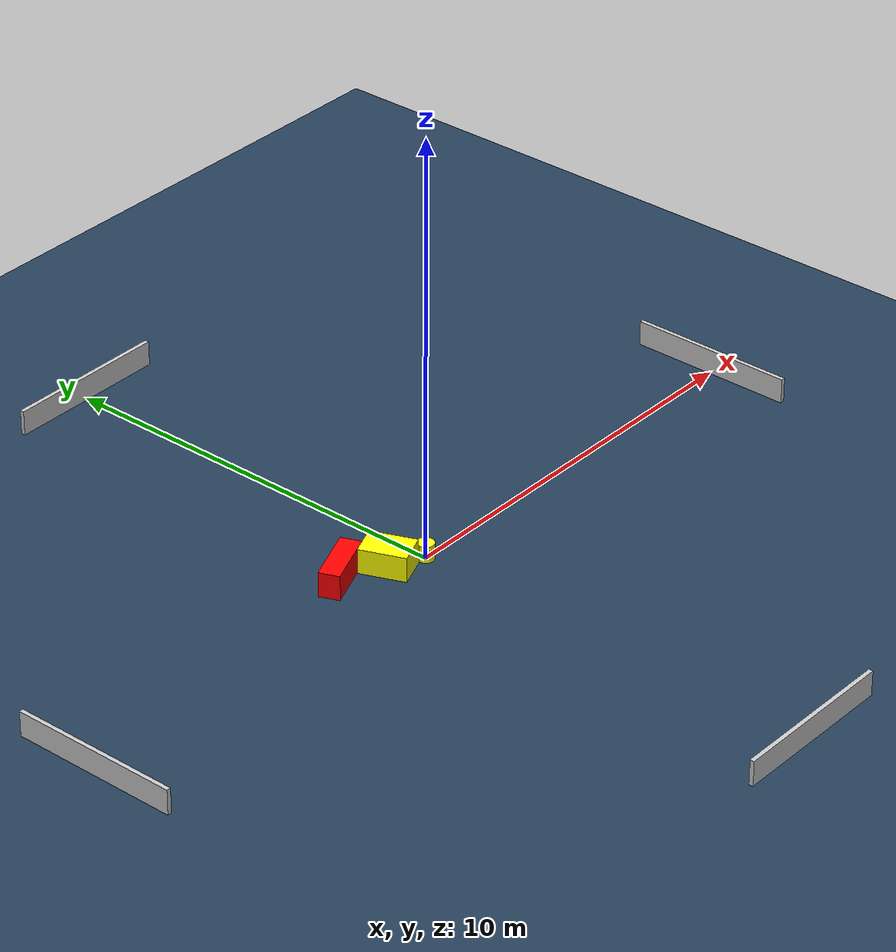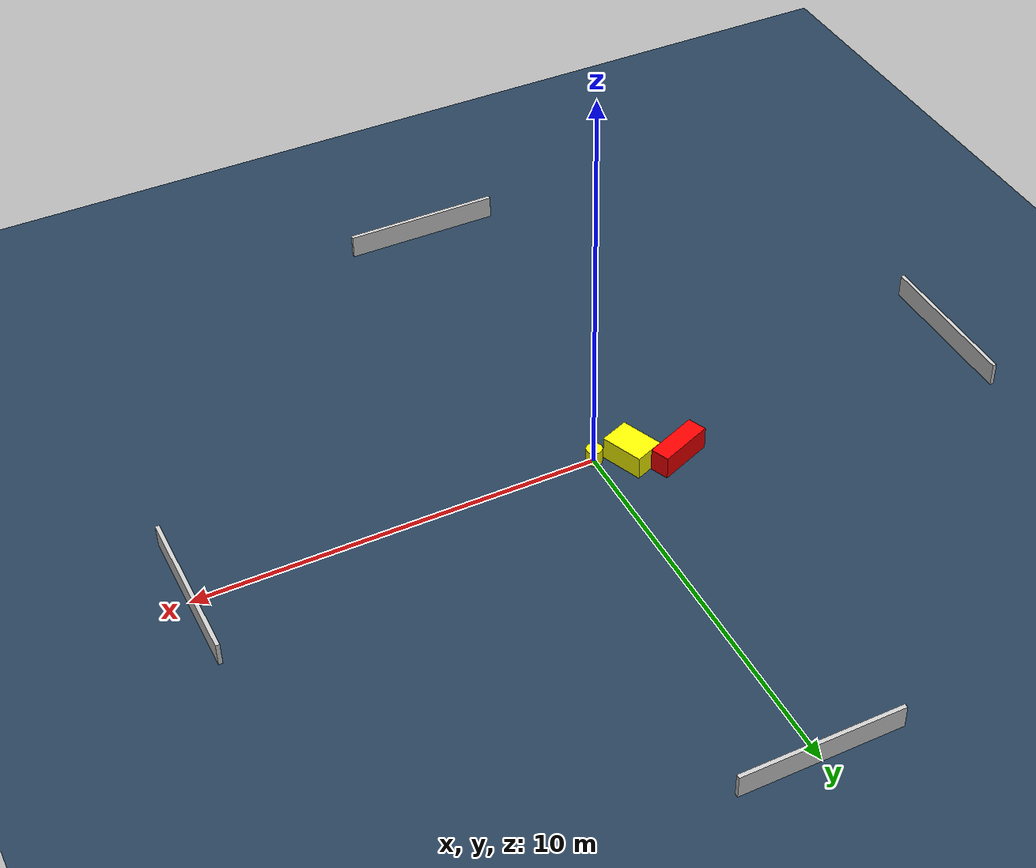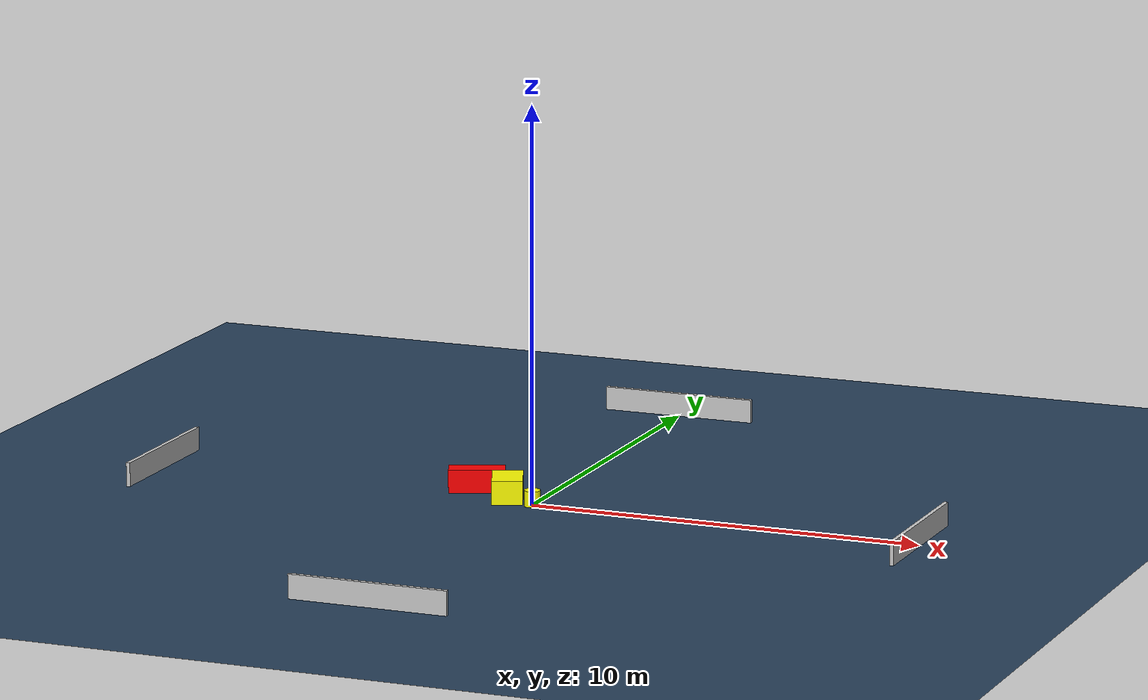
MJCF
<?xml version="1.0" ?>
<mujoco model="generated_environment">
  <option timestep="0.01" integrator="RK4" cone="elliptic"/>
  <default>
    <geom density="1"/>
  </default>
  <asset>
    <texture builtin="gradient" height="3072" name="skybox" rgb1="0.3 0.5 0.7" rgb2="0 0 0" type="skybox" width="512"/>
    <texture builtin="checker" height="300" name="groundplane" rgb1="0.2 0.3 0.4" rgb2="0.1 0.2 0.3" type="2d" width="300"/>
    <material name="groundplane" reflectance="0.2" texrepeat="5 5" texture="groundplane"/>
  </asset>
  <worldbody>
    <light dir="0 0 -1" directional="true" pos="0 0 1.5"/>
    <geom condim="3" friction="0.5 0.005 0.001" material="groundplane" name="floor" pos="0 0 0" size="0 0 0.05" type="plane"/>
    <body name="walls">
      <geom name="wall_1" condim="4" pos="-10.0 0.0 0.3" rgba="0.800000011920929 0.800000011920929 0.800000011920929 1.0" size="0.05 2.0 0.3" type="box"/>
      <geom name="wall_2" condim="4" pos="10.0 0.0 0.3" rgba="0.800000011920929 0.800000011920929 0.800000011920929 1.0" size="0.05 2.0 0.3" type="box"/>
      <geom name="wall_3" condim="4" pos="0.0 -10.0 0.3" rgba="0.800000011920929 0.800000011920929 0.800000011920929 1.0" size="2.0 0.05 0.3" type="box"/>
      <geom name="wall_4" condim="4" pos="0.0 10.0 0.3" rgba="0.800000011920929 0.800000011920929 0.800000011920929 1.0" size="2.0 0.05 0.3" type="box"/>
    </body>
    <body name="robot">
      <joint name="joint_x" type="slide" pos="0 0 0" axis="1 0 0"/>
      <joint name="joint_y" type="slide" pos="0 0 0" axis="0 1 0"/>
      <geom name="robot" type="cylinder" pos="0.0 0.0 0.2" size="0.2 0.2 0.0" mass="5.0" friction="1.0 0.005 0.0001" condim="4" rgba="1.0 1.0 0.0 1.0"/>
    </body>
    <body name="obstacle_1_movable">
      <geom name="obstacle_1_movable" condim="4" pos="-0.8069223495243346 0.35872201557101513 0.3" euler="0 0 111.86073743092801" friction="0.0 0.005 0.001" rgba="1.0 1.0 0.0 1.0" size="0.5504763611809261 0.3838062936033114 0.3" type="box" mass="0.1"/>
      <joint type="free"/>
    </body>
    <body name="obstacle_2_static">
      <geom name="obstacle_2_static" condim="4" pos="-1.8090195495477581 0.8141947876050538 0.3" euler="0 0 292.16289937886586" friction="0.0 0.005 0.001" rgba="1.0 0.0 0.0 1.0" size="0.24317590966864364 0.706165965862009 0.3" type="box"/>
    </body>
  </worldbody>
  <actuator>
    <motor name="actuator_x" joint="joint_x" gear="1" ctrlrange="-1 1"/>
    <motor name="actuator_y" joint="joint_y" gear="1" ctrlrange="-1 1"/>
  </actuator>
</mujoco>
